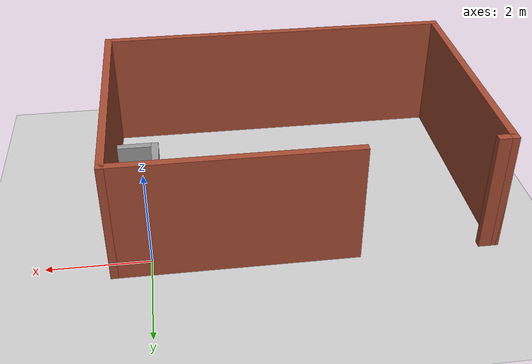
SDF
<?xml version='1.0'?>
<sdf version='1.6'>
  <world name="default">
    <light name='sun' type='directional'>
      <cast_shadows>1</cast_shadows>
      <pose frame=''>0 0 10 0 -0 0</pose>
      <diffuse>0.8 0.8 0.8 1</diffuse>
      <specular>0.2 0.2 0.2 1</specular>
      <attenuation>
        <range>1000</range>
        <constant>0.9</constant>
        <linear>0.01</linear>
        <quadratic>0.001</quadratic>
      </attenuation>
      <direction>-0.5 0.1 -0.9</direction>
    </light>
    <model name='ground_plane'>
      <static>1</static>
      <link name='link'>
        <collision name='collision'>
          <geometry>
            <plane>
              <normal>0 0 1</normal>
              <size>100 100</size>
            </plane>
          </geometry>
          <surface>
            <friction>
              <ode>
                <mu>100</mu>
                <mu2>50</mu2>
              </ode>
              <torsional>
                <ode/>
              </torsional>
            </friction>
            <contact>
              <ode/>
            </contact>
            <bounce/>
          </surface>
          <max_contacts>10</max_contacts>
        </collision>
        <visual name='visual'>
          <cast_shadows>0</cast_shadows>
          <geometry>
            <plane>
              <normal>0 0 1</normal>
              <size>100 100</size>
            </plane>
          </geometry>
          <material>
            <script>
              <uri>file://media/materials/scripts/gazebo.material</uri>
              <name>Gazebo/Grey</name>
            </script>
          </material>
        </visual>
        <self_collide>0</self_collide>
        <kinematic>0</kinematic>
      </link>
    </model>
    <gravity>0 0 -9.8</gravity>
    <magnetic_field>6e-06 2.3e-05 -4.2e-05</magnetic_field>
    <atmosphere type='adiabatic'/>
    <physics name='default_physics' default='0' type='ode'>
      <max_step_size>0.001</max_step_size>
      <real_time_factor>1</real_time_factor>
      <real_time_update_rate>1000</real_time_update_rate>
    </physics>
    <scene>
      <ambient>0.4 0.4 0.4 1</ambient>
      <background>0.7 0.7 0.7 1</background>
      <shadows>1</shadows>
    </scene>
    <spherical_coordinates>
      <surface_model>EARTH_WGS84</surface_model>
      <latitude_deg>0</latitude_deg>
      <longitude_deg>0</longitude_deg>
      <elevation>0</elevation>
      <heading_deg>0</heading_deg>
    </spherical_coordinates>
    <model name='basin_basic'>
      <pose frame=''>-2.98025 -2.10326 0 0 -0 0</pose>
      <link name='Wall_11'>
        <collision name='Wall_11_Collision'>
          <geometry>
            <box>
              <size>4.75 0.15 2.5</size>
            </box>
          </geometry>
          <pose frame=''>0 0 1.25 0 -0 0</pose>
        </collision>
        <visual name='Wall_11_Visual'>
          <pose frame=''>0 0 1.25 0 -0 0</pose>
          <geometry>
            <box>
              <size>4.75 0.15 2.5</size>
            </box>
          </geometry>
          <material>
            <script>
              <uri>file://media/materials/scripts/gazebo.material</uri>
              <name>Gazebo/Bricks</name>
            </script>
            <ambient>1 1 1 1</ambient>
          </material>
          <meta>
            <layer>0</layer>
          </meta>
        </visual>
        <pose frame=''>1.375 2.425 0 0 -0 3.14159</pose>
      </link>
      <link name='Wall_17'>
        <collision name='Wall_17_Collision'>
          <geometry>
            <box>
              <size>3 0.15 1</size>
            </box>
          </geometry>
          <pose frame=''>0 0 0.5 0 -0 0</pose>
          <max_contacts>10</max_contacts>
          <surface>
            <contact>
              <ode/>
            </contact>
            <bounce/>
            <friction>
              <torsional>
                <ode/>
              </torsional>
              <ode/>
            </friction>
          </surface>
        </collision>
        <visual name='Wall_17_Visual'>
          <pose frame=''>0 0 0.5 0 -0 0</pose>
          <geometry>
            <box>
              <size>3 0.15 1</size>
            </box>
          </geometry>
          <material>
            <script>
              <uri>file://media/materials/scripts/gazebo.material</uri>
              <name>Gazebo/Grey</name>
            </script>
            <ambient>1 1 1 1</ambient>
          </material>
          <meta>
            <layer>0</layer>
          </meta>
        </visual>
        <pose frame=''>2.81425 0.988264 0 0 -0 -1.5708</pose>
      </link>
      <link name='Wall_18'>
        <collision name='Wall_18_Collision'>
          <geometry>
            <box>
              <size>1 0.15 1</size>
            </box>
          </geometry>
          <pose frame=''>0 0 0.5 0 -0 0</pose>
          <max_contacts>10</max_contacts>
          <surface>
            <contact>
              <ode/>
            </contact>
            <bounce/>
            <friction>
              <torsional>
                <ode/>
              </torsional>
              <ode/>
            </friction>
          </surface>
        </collision>
        <visual name='Wall_18_Visual'>
          <pose frame=''>0 0 0.5 0 -0 0</pose>
          <geometry>
            <box>
              <size>1 0.15 1</size>
            </box>
          </geometry>
          <material>
            <script>
              <uri>file://media/materials/scripts/gazebo.material</uri>
              <name>Gazebo/Grey</name>
            </script>
            <ambient>1 1 1 1</ambient>
          </material>
          <meta>
            <layer>0</layer>
          </meta>
        </visual>
        <pose frame=''>3.23925 -0.436736 0 0 -0 0</pose>
      </link>
      <link name='Wall_5'>
        <collision name='Wall_5_Collision'>
          <geometry>
            <box>
              <size>5 0.15 2.5</size>
            </box>
          </geometry>
          <pose frame=''>0 0 1.25 0 -0 0</pose>
          <max_contacts>10</max_contacts>
          <surface>
            <contact>
              <ode/>
            </contact>
            <bounce/>
            <friction>
              <torsional>
                <ode/>
              </torsional>
              <ode/>
            </friction>
          </surface>
        </collision>
        <visual name='Wall_5_Visual'>
          <pose frame=''>0 0 1.25 0 -0 0</pose>
          <geometry>
            <box>
              <size>5 0.15 2.5</size>
            </box>
          </geometry>
          <material>
            <script>
              <uri>file://media/materials/scripts/gazebo.material</uri>
              <name>Gazebo/Bricks</name>
            </script>
            <ambient>1 1 1 1</ambient>
          </material>
          <meta>
            <layer>0</layer>
          </meta>
        </visual>
        <pose frame=''>3.675 0 0 0 -0 -1.5708</pose>
      </link>
      <link name='Wall_6'>
        <collision name='Wall_6_Collision'>
          <geometry>
            <box>
              <size>7.5 0.15 2.5</size>
            </box>
          </geometry>
          <pose frame=''>0 0 1.25 0 -0 0</pose>
          <max_contacts>10</max_contacts>
          <surface>
            <contact>
              <ode/>
            </contact>
            <bounce/>
            <friction>
              <torsional>
                <ode/>
              </torsional>
              <ode/>
            </friction>
          </surface>
        </collision>
        <visual name='Wall_6_Visual'>
          <pose frame=''>0 0 1.25 0 -0 0</pose>
          <geometry>
            <box>
              <size>7.5 0.15 2.5</size>
            </box>
          </geometry>
          <material>
            <script>
              <uri>file://media/materials/scripts/gazebo.material</uri>
              <name>Gazebo/Bricks</name>
            </script>
            <ambient>1 1 1 1</ambient>
          </material>
          <meta>
            <layer>0</layer>
          </meta>
        </visual>
        <pose frame=''>0 -2.425 0 0 -0 3.14159</pose>
      </link>
      <link name='Wall_7'>
        <collision name='Wall_7_Collision'>
          <geometry>
            <box>
              <size>5 0.15 2.5</size>
            </box>
          </geometry>
          <pose frame=''>0 0 1.25 0 -0 0</pose>
          <max_contacts>10</max_contacts>
          <surface>
            <contact>
              <ode/>
            </contact>
            <bounce/>
            <friction>
              <torsional>
                <ode/>
              </torsional>
              <ode/>
            </friction>
          </surface>
        </collision>
        <visual name='Wall_7_Visual'>
          <pose frame=''>0 0 1.25 0 -0 0</pose>
          <geometry>
            <box>
              <size>5 0.15 2.5</size>
            </box>
          </geometry>
          <material>
            <script>
              <uri>file://media/materials/scripts/gazebo.material</uri>
              <name>Gazebo/Bricks</name>
            </script>
            <ambient>1 1 1 1</ambient>
          </material>
          <meta>
            <layer>0</layer>
          </meta>
        </visual>
        <pose frame=''>-3.675 0 0 0 -0 1.5708</pose>
      </link>
      <link name='Wall_8'>
        <collision name='Wall_8_Collision'>
          <geometry>
            <box>
              <size>0.4 0.15 2.5</size>
            </box>
          </geometry>
          <pose frame=''>0 0 1.25 0 -0 0</pose>
          <max_contacts>10</max_contacts>
          <surface>
            <contact>
              <ode/>
            </contact>
            <bounce/>
            <friction>
              <torsional>
                <ode/>
              </torsional>
              <ode/>
            </friction>
          </surface>
        </collision>
        <visual name='Wall_8_Visual'>
          <pose frame=''>0 0 1.25 0 -0 0</pose>
          <geometry>
            <box>
              <size>0.4 0.15 2.5</size>
            </box>
          </geometry>
          <material>
            <script>
              <uri>file://media/materials/scripts/gazebo.material</uri>
              <name>Gazebo/Bricks</name>
            </script>
            <ambient>1 1 1 1</ambient>
          </material>
          <meta>
            <layer>0</layer>
          </meta>
        </visual>
        <pose frame=''>-3.55 2.425 0 0 -0 0</pose>
      </link>
      <static>1</static>
    </model>
  </world>
</sdf>
